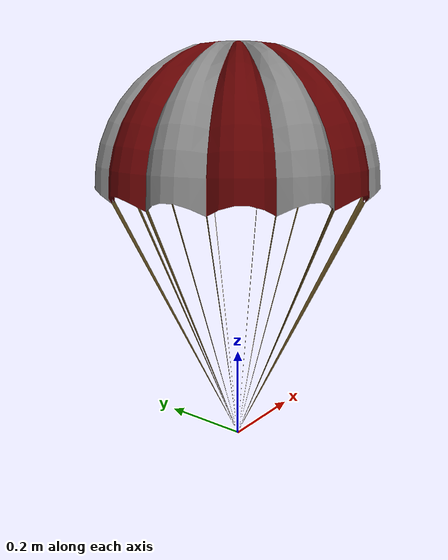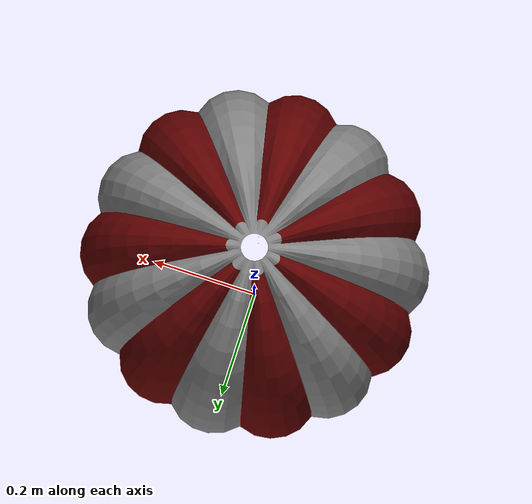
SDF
<?xml version="1.0" encoding="UTF-8"?>
<sdf version="1.9">
  <model name="parachute_canopy">
    <link name="link">
      <gravity>false</gravity>
      <inertial>
        <mass>0.001</mass>
        <inertia>
          <ixx>1e-6</ixx>
          <iyy>1e-6</iyy>
          <izz>1e-6</izz>
          <ixy>0</ixy><ixz>0</ixz><iyz>0</iyz>
        </inertia>
      </inertial>
      <visual name="canopy_visual">
        <geometry>
          <mesh>
            <uri>model://parachute_small/meshes/parachute_small.dae</uri>
            <scale>0.5 0.5 0.5</scale>
          </mesh>
        </geometry>
      </visual>
    </link>
  </model>
</sdf>
